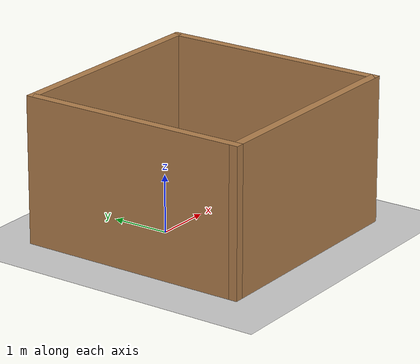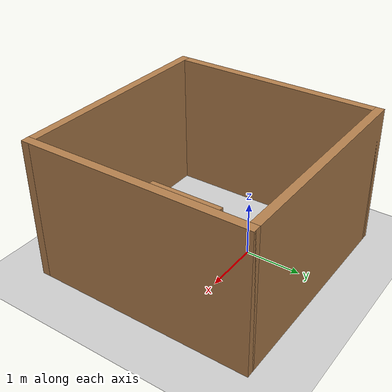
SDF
<sdf version="1.7">
 <world name="default">
  <light name="sun" type="directional">
   <pose>0 0 10 0 -0 0</pose>
   <diffuse>0.8 0.8 0.8 1</diffuse>
   <specular>0.2 0.2 0.2 1</specular>
   <attenuation>
    <range>1000</range>
    <constant>0.9</constant>
    <linear>0.01</linear>
    <quadratic>0.001</quadratic>
   </attenuation>
   <direction>-0.5 0.1 -0.9</direction>
   <spot><inner_angle>0</inner_angle><outer_angle>0</outer_angle><falloff>0</falloff></spot>
  </light>
  <model name="ground_plane">
   <static>1</static>
   <link name="link">
    <collision name="collision">
     <geometry><plane><normal>0 0 1</normal><size>100 100</size></plane></geometry>
     <surface>
      <contact><collide_bitmask>65535</collide_bitmask></contact>
      <friction><ode><mu>100</mu><mu2>50</mu2></ode></friction>
     </surface>
    </collision>
    <visual name="visual">
     <cast_shadows>0</cast_shadows>
     <geometry><plane><normal>0 0 1</normal><size>100 100</size></plane></geometry>
     <material>
      <script><uri>file://media/materials/scripts/gazebo.material</uri><name>Gazebo/Grey</name></script>
     </material>
    </visual>
   </link>
  </model>
  <gravity>0 0 -9.8</gravity>
  <magnetic_field>6e-06 2.3e-05 -4.2e-05</magnetic_field>
  <atmosphere type="adiabatic"/>
  <physics type="ode">
   <max_step_size>0.001</max_step_size>
   <real_time_factor>1</real_time_factor>
   <real_time_update_rate>1000</real_time_update_rate>
  </physics>
  <scene><ambient>0.4 0.4 0.4 1</ambient><background>0.7 0.7 0.7 1</background><shadows>1</shadows></scene>
  <spherical_coordinates>
   <surface_model>EARTH_WGS84</surface_model>
   <latitude_deg>0</latitude_deg>
   <longitude_deg>0</longitude_deg>
   <elevation>0</elevation>
   <heading_deg>0</heading_deg>
  </spherical_coordinates>
  <model name="ironawall">
   <pose>0.380454 0.76916 0 0 -0 0</pose>
   <link name="Wall_0">
    <collision name="Wall_0_Collision">
     <geometry><box><size>4 0.15 2.5</size></box></geometry>
     <pose>0 0 1.25 0 -0 0</pose>
    </collision>
    <visual name="Wall_0_Visual">
     <pose>0 0 1.25 0 -0 0</pose>
     <geometry><box><size>4 0.15 2.5</size></box></geometry>
     <material>
      <script><uri>file://media/materials/scripts/gazebo.material</uri><name>Gazebo/Wood</name></script>
      <ambient>0.435294 0.796078 0.67451 1</ambient>
     </material>
     <meta><layer>0</layer></meta>
    </visual>
    <pose>0 0.6425 0 0 -0 0</pose>
   </link>
   <link name="Wall_1">
    <collision name="Wall_1_Collision">
     <geometry><box><size>4 0.15 2.5</size></box></geometry>
     <pose>0 0 1.25 0 -0 0</pose>
    </collision>
    <visual name="Wall_1_Visual">
     <pose>0 0 1.25 0 -0 0</pose>
     <geometry><box><size>4 0.15 2.5</size></box></geometry>
     <material>
      <script><uri>file://media/materials/scripts/gazebo.material</uri><name>Gazebo/Wood</name></script>
      <ambient>0.435294 0.796078 0.67451 1</ambient>
     </material>
     <meta><layer>0</layer></meta>
    </visual>
    <pose>1.925 -1.2825 0 0 -0 -1.5708</pose>
   </link>
   <link name="Wall_2">
    <collision name="Wall_2_Collision">
     <geometry><box><size>4 0.15 2.5</size></box></geometry>
     <pose>0 0 1.25 0 -0 0</pose>
    </collision>
    <visual name="Wall_2_Visual">
     <pose>0 0 1.25 0 -0 0</pose>
     <geometry><box><size>4 0.15 2.5</size></box></geometry>
     <material>
      <script><uri>file://media/materials/scripts/gazebo.material</uri><name>Gazebo/Wood</name></script>
      <ambient>1 1 1 1</ambient>
     </material>
     <meta><layer>0</layer></meta>
    </visual>
    <pose>0 -3.2075 0 0 -0 3.14159</pose>
   </link>
   <link name="Wall_3">
    <collision name="Wall_3_Collision">
     <geometry><box><size>4 0.15 2.5</size></box></geometry>
     <pose>0 0 1.25 0 -0 0</pose>
    </collision>
    <visual name="Wall_3_Visual">
     <pose>0 0 1.25 0 -0 0</pose>
     <geometry><box><size>4 0.15 2.5</size></box></geometry>
     <material>
      <script><uri>file://media/materials/scripts/gazebo.material</uri><name>Gazebo/Wood</name></script>
      <ambient>0.435294 0.796078 0.67451 1</ambient>
     </material>
     <meta><layer>0</layer></meta>
    </visual>
    <pose>-1.925 -1.2825 0 0 -0 1.5708</pose>
   </link>
   <static>1</static>
  </model>
  <model name="wood_cube_10cm">
   <link name="link">
    <pose>-2.30248 -4.2675 0.05 0 -0 0</pose>
    <inertial>
     <mass>589.277</mass>
     <inertia><ixx>172.893</ixx><ixy>0</ixy><ixz>0</ixz><iyy>94.9528</iyy><iyz>0</iyz><izz>120.047</izz></inertia>
    </inertial>
    <visual name="visual">
     <geometry><box><size>0.654777 1.41982 1.22674</size></box></geometry>
     <material>
      <script><uri>file://media/materials/scripts/gazebo.material</uri><name>Gazebo/Wood</name></script>
      <shader type="pixel"><normal_map>__default__</normal_map></shader>
      <ambient>1 1 1 1</ambient>
      <diffuse>1 1 1 1</diffuse>
      <specular>0.2 0.2 0.2 1</specular>
      <emissive>0 0 0 1</emissive>
     </material>
     <pose>0 -0.01 0 0 -0 0</pose>
    </visual>
    <collision name="collision">
     <geometry><box><size>0.654777 1.41982 1.22674</size></box></geometry>
     <surface>
      <friction>
       <ode><mu>1</mu><mu2>1</mu2><fdir1>0 0 0</fdir1><slip1>0</slip1><slip2>0</slip2></ode>
       <torsional>
        <coefficient>1</coefficient>
        <patch_radius>0</patch_radius>
        <surface_radius>0.01</surface_radius>
        <use_patch_radius>0</use_patch_radius>
        <ode><slip>0</slip></ode>
       </torsional>
      </friction>
      <bounce><restitution_coefficient>0</restitution_coefficient><threshold>1e+06</threshold></bounce>
      <contact>
       <collide_without_contact>0</collide_without_contact>
       <collide_without_contact_bitmask>1</collide_without_contact_bitmask>
       <collide_bitmask>1</collide_bitmask>
       <ode>
        <soft_cfm>0</soft_cfm>
        <soft_erp>0.2</soft_erp>
        <kp>100000</kp>
        <kd>100</kd>
        <max_vel>100</max_vel>
        <min_depth>0.001</min_depth>
       </ode>
       <bullet>
        <split_impulse>1</split_impulse>
        <split_impulse_penetration_threshold>-0.01</split_impulse_penetration_threshold>
        <soft_cfm>0</soft_cfm>
        <soft_erp>0.2</soft_erp>
        <kp>100000</kp>
        <kd>100</kd>
       </bullet>
      </contact>
     </surface>
    </collision>
   </link>
   <static>0</static>
   <pose>3.20364 3.42757 0.547717 6.4e-05 2.4e-05 0.000111</pose>
  </model>
 </world>
</sdf>
